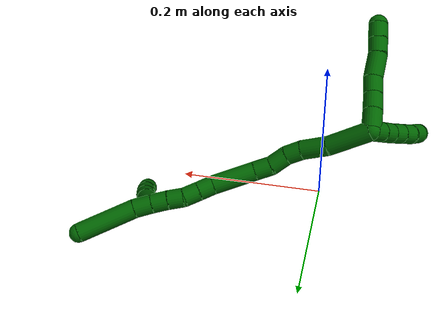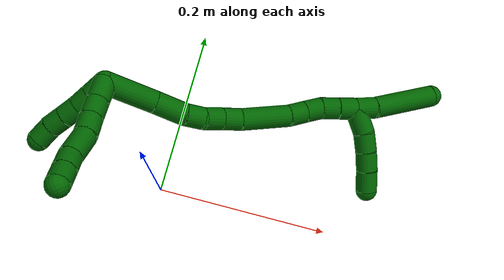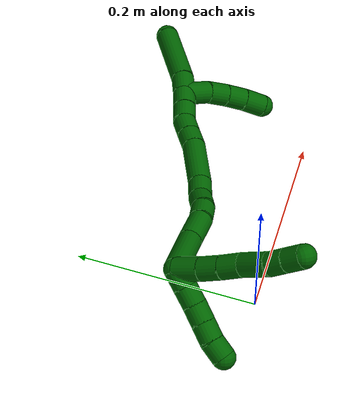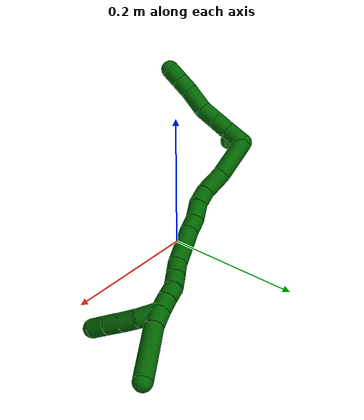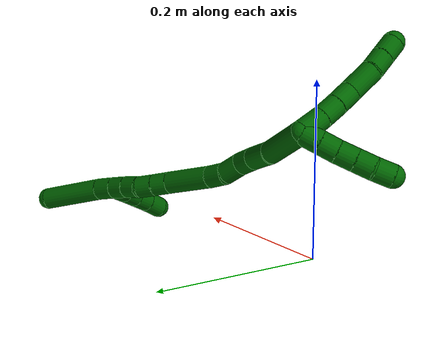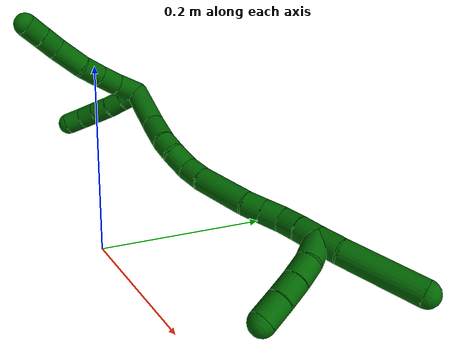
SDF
<sdf version="1.7">
 <world name="default">
  <model name="6">
   <static>0</static>
   <link name="6">
    <collision name="collision-cylinder-e_1_2_8">
     <pose>-0.009079 -0.005783 -0.008994 2.57014 -0.703951 -1.79228</pose>
     <geometry><cylinder><radius>0.0125</radius><length>0.028055</length></cylinder></geometry>
     <surface>
      <friction><ode><mu>1.16</mu><mu2>1.16</mu2><slip1>0</slip1><slip2>0</slip2></ode></friction>
      <contact><ode><kp>1e+06</kp><kd>1</kd><max_vel>0</max_vel><min_depth>0.001</min_depth></ode></contact>
     </surface>
    </collision>
    <visual name="visual-cylinder-e_1_2_8">
     <pose>-0.009079 -0.005783 -0.008994 2.57014 -0.703951 -1.79228</pose>
     <geometry><cylinder><radius>0.0125</radius><length>0.028055</length></cylinder></geometry>
     <material><ambient>0 0.392157 0.003922 1</ambient></material>
    </visual>
    <collision name="collision-cylinder-e_2_8_9">
     <pose>-0.025386 -0.017132 -0.025296 2.49081 -0.666651 -1.59672</pose>
     <geometry><cylinder><radius>0.0125</radius><length>0.023376</length></cylinder></geometry>
     <surface>
      <friction><ode><mu>1.16</mu><mu2>1.16</mu2><slip1>0</slip1><slip2>0</slip2></ode></friction>
      <contact><ode><kp>1e+06</kp><kd>1</kd><max_vel>0</max_vel><min_depth>0.001</min_depth></ode></contact>
     </surface>
    </collision>
    <visual name="visual-cylinder-e_2_8_9">
     <pose>-0.025386 -0.017132 -0.025296 2.49081 -0.666651 -1.59672</pose>
     <geometry><cylinder><radius>0.0125</radius><length>0.023376</length></cylinder></geometry>
     <material><ambient>0 0.392157 0.003922 1</ambient></material>
    </visual>
    <collision name="collision-cylinder-e_3_9_10">
     <pose>-0.039513 -0.028643 -0.040031 2.46633 -0.627454 -1.49199</pose>
     <geometry><cylinder><radius>0.0125</radius><length>0.023504</length></cylinder></geometry>
     <surface>
      <friction><ode><mu>1.16</mu><mu2>1.16</mu2><slip1>0</slip1><slip2>0</slip2></ode></friction>
      <contact><ode><kp>1e+06</kp><kd>1</kd><max_vel>0</max_vel><min_depth>0.001</min_depth></ode></contact>
     </surface>
    </collision>
    <visual name="visual-cylinder-e_3_9_10">
     <pose>-0.039513 -0.028643 -0.040031 2.46633 -0.627454 -1.49199</pose>
     <geometry><cylinder><radius>0.0125</radius><length>0.023504</length></cylinder></geometry>
     <material><ambient>0 0.392157 0.003922 1</ambient></material>
    </visual>
    <collision name="collision-cylinder-e_4_10_11">
     <pose>-0.058443 -0.043853 -0.054894 2.24738 -0.791745 -1.43382</pose>
     <geometry><cylinder><radius>0.0125</radius><length>0.033816</length></cylinder></geometry>
     <surface>
      <friction><ode><mu>1.16</mu><mu2>1.16</mu2><slip1>0</slip1><slip2>0</slip2></ode></friction>
      <contact><ode><kp>1e+06</kp><kd>1</kd><max_vel>0</max_vel><min_depth>0.001</min_depth></ode></contact>
     </surface>
    </collision>
    <visual name="visual-cylinder-e_4_10_11">
     <pose>-0.058443 -0.043853 -0.054894 2.24738 -0.791745 -1.43382</pose>
     <geometry><cylinder><radius>0.0125</radius><length>0.033816</length></cylinder></geometry>
     <material><ambient>0 0.392157 0.003922 1</ambient></material>
    </visual>
    <collision name="collision-cylinder-e_5_11_12">
     <pose>-0.076428 -0.059602 -0.067618 2.25456 -0.618402 -1.18392</pose>
     <geometry><cylinder><radius>0.0125</radius><length>0.020537</length></cylinder></geometry>
     <surface>
      <friction><ode><mu>1.16</mu><mu2>1.16</mu2><slip1>0</slip1><slip2>0</slip2></ode></friction>
      <contact><ode><kp>1e+06</kp><kd>1</kd><max_vel>0</max_vel><min_depth>0.001</min_depth></ode></contact>
     </surface>
    </collision>
    <visual name="visual-cylinder-e_5_11_12">
     <pose>-0.076428 -0.059602 -0.067618 2.25456 -0.618402 -1.18392</pose>
     <geometry><cylinder><radius>0.0125</radius><length>0.020537</length></cylinder></geometry>
     <material><ambient>0 0.392157 0.003922 1</ambient></material>
    </visual>
    <collision name="collision-cylinder-e_6_12_6">
     <pose>-0.088423 -0.072597 -0.07823 2.25659 -0.622981 -1.19367</pose>
     <geometry><cylinder><radius>0.0125</radius><length>0.020711</length></cylinder></geometry>
     <surface>
      <friction><ode><mu>1.16</mu><mu2>1.16</mu2><slip1>0</slip1><slip2>0</slip2></ode></friction>
      <contact><ode><kp>1e+06</kp><kd>1</kd><max_vel>0</max_vel><min_depth>0.001</min_depth></ode></contact>
     </surface>
    </collision>
    <visual name="visual-cylinder-e_6_12_6">
     <pose>-0.088423 -0.072597 -0.07823 2.25659 -0.622981 -1.19367</pose>
     <geometry><cylinder><radius>0.0125</radius><length>0.020711</length></cylinder></geometry>
     <material><ambient>0 0.392157 0.003922 1</ambient></material>
    </visual>
    <collision name="collision-cylinder-e_1_2_13">
     <pose>-0.007252 0.006311 -0.002753 -1.98219 -0.811356 1.16115</pose>
     <geometry><cylinder><radius>0.0125</radius><length>0.02</length></cylinder></geometry>
     <surface>
      <friction><ode><mu>1.16</mu><mu2>1.16</mu2><slip1>0</slip1><slip2>0</slip2></ode></friction>
      <contact><ode><kp>1e+06</kp><kd>1</kd><max_vel>0</max_vel><min_depth>0.001</min_depth></ode></contact>
     </surface>
    </collision>
    <visual name="visual-cylinder-e_1_2_13">
     <pose>-0.007252 0.006311 -0.002753 -1.98219 -0.811356 1.16115</pose>
     <geometry><cylinder><radius>0.0125</radius><length>0.02</length></cylinder></geometry>
     <material><ambient>0 0.392157 0.003922 1</ambient></material>
    </visual>
    <collision name="collision-cylinder-e_2_13_14">
     <pose>-0.021765 0.018919 -0.008268 -1.984 -0.812553 1.16447</pose>
     <geometry><cylinder><radius>0.0125</radius><length>0.02</length></cylinder></geometry>
     <surface>
      <friction><ode><mu>1.16</mu><mu2>1.16</mu2><slip1>0</slip1><slip2>0</slip2></ode></friction>
      <contact><ode><kp>1e+06</kp><kd>1</kd><max_vel>0</max_vel><min_depth>0.001</min_depth></ode></contact>
     </surface>
    </collision>
    <visual name="visual-cylinder-e_2_13_14">
     <pose>-0.021765 0.018919 -0.008268 -1.984 -0.812553 1.16447</pose>
     <geometry><cylinder><radius>0.0125</radius><length>0.02</length></cylinder></geometry>
     <material><ambient>0 0.392157 0.003922 1</ambient></material>
    </visual>
    <collision name="collision-cylinder-e_3_14_15">
     <pose>-0.036799 0.031137 -0.013157 -1.9158 -0.890397 1.1923</pose>
     <geometry><cylinder><radius>0.0125</radius><length>0.02</length></cylinder></geometry>
     <surface>
      <friction><ode><mu>1.16</mu><mu2>1.16</mu2><slip1>0</slip1><slip2>0</slip2></ode></friction>
      <contact><ode><kp>1e+06</kp><kd>1</kd><max_vel>0</max_vel><min_depth>0.001</min_depth></ode></contact>
     </surface>
    </collision>
    <visual name="visual-cylinder-e_3_14_15">
     <pose>-0.036799 0.031137 -0.013157 -1.9158 -0.890397 1.1923</pose>
     <geometry><cylinder><radius>0.0125</radius><length>0.02</length></cylinder></geometry>
     <material><ambient>0 0.392157 0.003922 1</ambient></material>
    </visual>
    <collision name="collision-cylinder-e_4_15_16">
     <pose>-0.052369 0.042976 -0.017326 -1.9029 -0.894297 1.18426</pose>
     <geometry><cylinder><radius>0.0125</radius><length>0.02</length></cylinder></geometry>
     <surface>
      <friction><ode><mu>1.16</mu><mu2>1.16</mu2><slip1>0</slip1><slip2>0</slip2></ode></friction>
      <contact><ode><kp>1e+06</kp><kd>1</kd><max_vel>0</max_vel><min_depth>0.001</min_depth></ode></contact>
     </surface>
    </collision>
    <visual name="visual-cylinder-e_4_15_16">
     <pose>-0.052369 0.042976 -0.017326 -1.9029 -0.894297 1.18426</pose>
     <geometry><cylinder><radius>0.0125</radius><length>0.02</length></cylinder></geometry>
     <material><ambient>0 0.392157 0.003922 1</ambient></material>
    </visual>
    <collision name="collision-cylinder-e_5_16_5">
     <pose>-0.067746 0.054186 -0.023183 -2.1956 -0.860059 1.4615</pose>
     <geometry><cylinder><radius>0.0125</radius><length>0.02</length></cylinder></geometry>
     <surface>
      <friction><ode><mu>1.16</mu><mu2>1.16</mu2><slip1>0</slip1><slip2>0</slip2></ode></friction>
      <contact><ode><kp>1e+06</kp><kd>1</kd><max_vel>0</max_vel><min_depth>0.001</min_depth></ode></contact>
     </surface>
    </collision>
    <visual name="visual-cylinder-e_5_16_5">
     <pose>-0.067746 0.054186 -0.023183 -2.1956 -0.860059 1.4615</pose>
     <geometry><cylinder><radius>0.0125</radius><length>0.02</length></cylinder></geometry>
     <material><ambient>0 0.392157 0.003922 1</ambient></material>
    </visual>
    <collision name="collision-cylinder-e_1_2_17">
     <pose>0.022443 0.004879 -0.01793 -2.87593 0.879235 -2.58796</pose>
     <geometry><cylinder><radius>0.0125</radius><length>0.058274</length></cylinder></geometry>
     <surface>
      <friction><ode><mu>1.16</mu><mu2>1.16</mu2><slip1>0</slip1><slip2>0</slip2></ode></friction>
      <contact><ode><kp>1e+06</kp><kd>1</kd><max_vel>0</max_vel><min_depth>0.001</min_depth></ode></contact>
     </surface>
    </collision>
    <visual name="visual-cylinder-e_1_2_17">
     <pose>0.022443 0.004879 -0.01793 -2.87593 0.879235 -2.58796</pose>
     <geometry><cylinder><radius>0.0125</radius><length>0.058274</length></cylinder></geometry>
     <material><ambient>0 0.392157 0.003922 1</ambient></material>
    </visual>
    <collision name="collision-cylinder-e_2_17_18">
     <pose>0.057986 0.009829 -0.047702 -3.13552 0.835806 -3.12793</pose>
     <geometry><cylinder><radius>0.0125</radius><length>0.035319</length></cylinder></geometry>
     <surface>
      <friction><ode><mu>1.16</mu><mu2>1.16</mu2><slip1>0</slip1><slip2>0</slip2></ode></friction>
      <contact><ode><kp>1e+06</kp><kd>1</kd><max_vel>0</max_vel><min_depth>0.001</min_depth></ode></contact>
     </surface>
    </collision>
    <visual name="visual-cylinder-e_2_17_18">
     <pose>0.057986 0.009829 -0.047702 -3.13552 0.835806 -3.12793</pose>
     <geometry><cylinder><radius>0.0125</radius><length>0.035319</length></cylinder></geometry>
     <material><ambient>0 0.392157 0.003922 1</ambient></material>
    </visual>
    <collision name="collision-cylinder-e_3_18_19">
     <pose>0.080213 0.01081 -0.065014 -2.97692 1.02481 -2.85026</pose>
     <geometry><cylinder><radius>0.0125</radius><length>0.02136</length></cylinder></geometry>
     <surface>
      <friction><ode><mu>1.16</mu><mu2>1.16</mu2><slip1>0</slip1><slip2>0</slip2></ode></friction>
      <contact><ode><kp>1e+06</kp><kd>1</kd><max_vel>0</max_vel><min_depth>0.001</min_depth></ode></contact>
     </surface>
    </collision>
    <visual name="visual-cylinder-e_3_18_19">
     <pose>0.080213 0.01081 -0.065014 -2.97692 1.02481 -2.85026</pose>
     <geometry><cylinder><radius>0.0125</radius><length>0.02136</length></cylinder></geometry>
     <material><ambient>0 0.392157 0.003922 1</ambient></material>
    </visual>
    <collision name="collision-cylinder-e_4_19_20">
     <pose>0.100344 0.014776 -0.074044 -2.43201 1.16776 -2.11956</pose>
     <geometry><cylinder><radius>0.0125</radius><length>0.023924</length></cylinder></geometry>
     <surface>
      <friction><ode><mu>1.16</mu><mu2>1.16</mu2><slip1>0</slip1><slip2>0</slip2></ode></friction>
      <contact><ode><kp>1e+06</kp><kd>1</kd><max_vel>0</max_vel><min_depth>0.001</min_depth></ode></contact>
     </surface>
    </collision>
    <visual name="visual-cylinder-e_4_19_20">
     <pose>0.100344 0.014776 -0.074044 -2.43201 1.16776 -2.11956</pose>
     <geometry><cylinder><radius>0.0125</radius><length>0.023924</length></cylinder></geometry>
     <material><ambient>0 0.392157 0.003922 1</ambient></material>
    </visual>
    <collision name="collision-cylinder-e_5_20_21">
     <pose>0.121706 0.017541 -0.081936 3.07445 1.17377 3.04069</pose>
     <geometry><cylinder><radius>0.0125</radius><length>0.022463</length></cylinder></geometry>
     <surface>
      <friction><ode><mu>1.16</mu><mu2>1.16</mu2><slip1>0</slip1><slip2>0</slip2></ode></friction>
      <contact><ode><kp>1e+06</kp><kd>1</kd><max_vel>0</max_vel><min_depth>0.001</min_depth></ode></contact>
     </surface>
    </collision>
    <visual name="visual-cylinder-e_5_20_21">
     <pose>0.121706 0.017541 -0.081936 3.07445 1.17377 3.04069</pose>
     <geometry><cylinder><radius>0.0125</radius><length>0.022463</length></cylinder></geometry>
     <material><ambient>0 0.392157 0.003922 1</ambient></material>
    </visual>
    <collision name="collision-cylinder-e_6_21_22">
     <pose>0.159261 0.014996 -0.094192 2.86436 1.27672 2.76989</pose>
     <geometry><cylinder><radius>0.0125</radius><length>0.056836</length></cylinder></geometry>
     <surface>
      <friction><ode><mu>1.16</mu><mu2>1.16</mu2><slip1>0</slip1><slip2>0</slip2></ode></friction>
      <contact><ode><kp>1e+06</kp><kd>1</kd><max_vel>0</max_vel><min_depth>0.001</min_depth></ode></contact>
     </surface>
    </collision>
    <visual name="visual-cylinder-e_6_21_22">
     <pose>0.159261 0.014996 -0.094192 2.86436 1.27672 2.76989</pose>
     <geometry><cylinder><radius>0.0125</radius><length>0.056836</length></cylinder></geometry>
     <material><ambient>0 0.392157 0.003922 1</ambient></material>
    </visual>
    <collision name="collision-cylinder-e_7_22_23">
     <pose>0.196369 0.012109 -0.103401 2.68472 1.42721 2.61691</pose>
     <geometry><cylinder><radius>0.0125</radius><length>0.020026</length></cylinder></geometry>
     <surface>
      <friction><ode><mu>1.16</mu><mu2>1.16</mu2><slip1>0</slip1><slip2>0</slip2></ode></friction>
      <contact><ode><kp>1e+06</kp><kd>1</kd><max_vel>0</max_vel><min_depth>0.001</min_depth></ode></contact>
     </surface>
    </collision>
    <visual name="visual-cylinder-e_7_22_23">
     <pose>0.196369 0.012109 -0.103401 2.68472 1.42721 2.61691</pose>
     <geometry><cylinder><radius>0.0125</radius><length>0.020026</length></cylinder></geometry>
     <material><ambient>0 0.392157 0.003922 1</ambient></material>
    </visual>
    <collision name="collision-cylinder-e_8_23_24">
     <pose>0.216361 0.010686 -0.106135 2.64155 1.40854 2.55764</pose>
     <geometry><cylinder><radius>0.0125</radius><length>0.020434</length></cylinder></geometry>
     <surface>
      <friction><ode><mu>1.16</mu><mu2>1.16</mu2><slip1>0</slip1><slip2>0</slip2></ode></friction>
      <contact><ode><kp>1e+06</kp><kd>1</kd><max_vel>0</max_vel><min_depth>0.001</min_depth></ode></contact>
     </surface>
    </collision>
    <visual name="visual-cylinder-e_8_23_24">
     <pose>0.216361 0.010686 -0.106135 2.64155 1.40854 2.55764</pose>
     <geometry><cylinder><radius>0.0125</radius><length>0.020434</length></cylinder></geometry>
     <material><ambient>0 0.392157 0.003922 1</ambient></material>
    </visual>
    <collision name="collision-cylinder-e_9_24_25">
     <pose>0.235747 0.007977 -0.111527 2.68898 1.1303 2.44503</pose>
     <geometry><cylinder><radius>0.0125</radius><length>0.02057</length></cylinder></geometry>
     <surface>
      <friction><ode><mu>1.16</mu><mu2>1.16</mu2><slip1>0</slip1><slip2>0</slip2></ode></friction>
      <contact><ode><kp>1e+06</kp><kd>1</kd><max_vel>0</max_vel><min_depth>0.001</min_depth></ode></contact>
     </surface>
    </collision>
    <visual name="visual-cylinder-e_9_24_25">
     <pose>0.235747 0.007977 -0.111527 2.68898 1.1303 2.44503</pose>
     <geometry><cylinder><radius>0.0125</radius><length>0.02057</length></cylinder></geometry>
     <material><ambient>0 0.392157 0.003922 1</ambient></material>
    </visual>
    <collision name="collision-cylinder-e_10_25_1">
     <pose>0.254629 0.004613 -0.11925 2.77627 1.17113 2.59827</pose>
     <geometry><cylinder><radius>0.0125</radius><length>0.020796</length></cylinder></geometry>
     <surface>
      <friction><ode><mu>1.16</mu><mu2>1.16</mu2><slip1>0</slip1><slip2>0</slip2></ode></friction>
      <contact><ode><kp>1e+06</kp><kd>1</kd><max_vel>0</max_vel><min_depth>0.001</min_depth></ode></contact>
     </surface>
    </collision>
    <visual name="visual-cylinder-e_10_25_1">
     <pose>0.254629 0.004613 -0.11925 2.77627 1.17113 2.59827</pose>
     <geometry><cylinder><radius>0.0125</radius><length>0.020796</length></cylinder></geometry>
     <material><ambient>0 0.392157 0.003922 1</ambient></material>
    </visual>
    <collision name="collision-cylinder-e_1_1_26">
     <pose>0.275421 0.001706 -0.126695 2.76212 1.23233 2.61193</pose>
     <geometry><cylinder><radius>0.0125</radius><length>0.023776</length></cylinder></geometry>
     <surface>
      <friction><ode><mu>1.16</mu><mu2>1.16</mu2><slip1>0</slip1><slip2>0</slip2></ode></friction>
      <contact><ode><kp>1e+06</kp><kd>1</kd><max_vel>0</max_vel><min_depth>0.001</min_depth></ode></contact>
     </surface>
    </collision>
    <visual name="visual-cylinder-e_1_1_26">
     <pose>0.275421 0.001706 -0.126695 2.76212 1.23233 2.61193</pose>
     <geometry><cylinder><radius>0.0125</radius><length>0.023776</length></cylinder></geometry>
     <material><ambient>0 0.392157 0.003922 1</ambient></material>
    </visual>
    <collision name="collision-cylinder-e_2_26_4">
     <pose>0.324199 -0.001447 -0.136572 2.87581 1.40109 2.82714</pose>
     <geometry><cylinder><radius>0.0125</radius><length>0.076224</length></cylinder></geometry>
     <surface>
      <friction><ode><mu>1.16</mu><mu2>1.16</mu2><slip1>0</slip1><slip2>0</slip2></ode></friction>
      <contact><ode><kp>1e+06</kp><kd>1</kd><max_vel>0</max_vel><min_depth>0.001</min_depth></ode></contact>
     </surface>
    </collision>
    <visual name="visual-cylinder-e_2_26_4">
     <pose>0.324199 -0.001447 -0.136572 2.87581 1.40109 2.82714</pose>
     <geometry><cylinder><radius>0.0125</radius><length>0.076224</length></cylinder></geometry>
     <material><ambient>0 0.392157 0.003922 1</ambient></material>
    </visual>
    <collision name="collision-cylinder-e_1_1_27">
     <pose>0.264843 0.005513 -0.137753 -2.98367 0.042641 -0.526488</pose>
     <geometry><cylinder><radius>0.0125</radius><length>0.029846</length></cylinder></geometry>
     <surface>
      <friction><ode><mu>1.16</mu><mu2>1.16</mu2><slip1>0</slip1><slip2>0</slip2></ode></friction>
      <contact><ode><kp>1e+06</kp><kd>1</kd><max_vel>0</max_vel><min_depth>0.001</min_depth></ode></contact>
     </surface>
    </collision>
    <visual name="visual-cylinder-e_1_1_27">
     <pose>0.264843 0.005513 -0.137753 -2.98367 0.042641 -0.526488</pose>
     <geometry><cylinder><radius>0.0125</radius><length>0.029846</length></cylinder></geometry>
     <material><ambient>0 0.392157 0.003922 1</ambient></material>
    </visual>
    <collision name="collision-cylinder-e_2_27_28">
     <pose>0.26391 0.010988 -0.163305 -2.86016 -0.138392 0.910046</pose>
     <geometry><cylinder><radius>0.0125</radius><length>0.02276</length></cylinder></geometry>
     <surface>
      <friction><ode><mu>1.16</mu><mu2>1.16</mu2><slip1>0</slip1><slip2>0</slip2></ode></friction>
      <contact><ode><kp>1e+06</kp><kd>1</kd><max_vel>0</max_vel><min_depth>0.001</min_depth></ode></contact>
     </surface>
    </collision>
    <visual name="visual-cylinder-e_2_27_28">
     <pose>0.26391 0.010988 -0.163305 -2.86016 -0.138392 0.910046</pose>
     <geometry><cylinder><radius>0.0125</radius><length>0.02276</length></cylinder></geometry>
     <material><ambient>0 0.392157 0.003922 1</ambient></material>
    </visual>
    <collision name="collision-cylinder-e_3_28_29">
     <pose>0.260081 0.01761 -0.184677 -2.82181 -0.200652 1.11605</pose>
     <geometry><cylinder><radius>0.0125</radius><length>0.022669</length></cylinder></geometry>
     <surface>
      <friction><ode><mu>1.16</mu><mu2>1.16</mu2><slip1>0</slip1><slip2>0</slip2></ode></friction>
      <contact><ode><kp>1e+06</kp><kd>1</kd><max_vel>0</max_vel><min_depth>0.001</min_depth></ode></contact>
     </surface>
    </collision>
    <visual name="visual-cylinder-e_3_28_29">
     <pose>0.260081 0.01761 -0.184677 -2.82181 -0.200652 1.11605</pose>
     <geometry><cylinder><radius>0.0125</radius><length>0.022669</length></cylinder></geometry>
     <material><ambient>0 0.392157 0.003922 1</ambient></material>
    </visual>
    <collision name="collision-cylinder-e_4_29_3">
     <pose>0.254968 0.025707 -0.206332 -2.74867 -0.232964 1.06298</pose>
     <geometry><cylinder><radius>0.0125</radius><length>0.024725</length></cylinder></geometry>
     <surface>
      <friction><ode><mu>1.16</mu><mu2>1.16</mu2><slip1>0</slip1><slip2>0</slip2></ode></friction>
      <contact><ode><kp>1e+06</kp><kd>1</kd><max_vel>0</max_vel><min_depth>0.001</min_depth></ode></contact>
     </surface>
    </collision>
    <visual name="visual-cylinder-e_4_29_3">
     <pose>0.254968 0.025707 -0.206332 -2.74867 -0.232964 1.06298</pose>
     <geometry><cylinder><radius>0.0125</radius><length>0.024725</length></cylinder></geometry>
     <material><ambient>0 0.392157 0.003922 1</ambient></material>
    </visual>
    <collision name="collision-sphere-3">
     <pose>0.252114 0.030313 -0.217444 0 -0 0</pose>
     <geometry><sphere><radius>0.0125</radius></sphere></geometry>
     <surface>
      <friction><ode><mu>1.16</mu><mu2>1.16</mu2><slip1>0</slip1><slip2>0</slip2></ode></friction>
      <contact><ode><kp>1e+06</kp><kd>1</kd><max_vel>0</max_vel><min_depth>0.001</min_depth></ode></contact>
     </surface>
    </collision>
    <visual name="visual-sphere-3">
     <pose>0.252114 0.030313 -0.217444 0 -0 0</pose>
     <geometry><sphere><radius>0.0125</radius></sphere></geometry>
     <material><ambient>0 0.392157 0.003922 1</ambient></material>
    </visual>
    <collision name="collision-sphere-29">
     <pose>0.257822 0.021102 -0.19522 0 -0 0</pose>
     <geometry><sphere><radius>0.0125</radius></sphere></geometry>
     <surface>
      <friction><ode><mu>1.16</mu><mu2>1.16</mu2><slip1>0</slip1><slip2>0</slip2></ode></friction>
      <contact><ode><kp>1e+06</kp><kd>1</kd><max_vel>0</max_vel><min_depth>0.001</min_depth></ode></contact>
     </surface>
    </collision>
    <visual name="visual-sphere-29">
     <pose>0.257822 0.021102 -0.19522 0 -0 0</pose>
     <geometry><sphere><radius>0.0125</radius></sphere></geometry>
     <material><ambient>0 0.392157 0.003922 1</ambient></material>
    </visual>
    <collision name="collision-sphere-28">
     <pose>0.26234 0.014118 -0.174133 0 -0 0</pose>
     <geometry><sphere><radius>0.0125</radius></sphere></geometry>
     <surface>
      <friction><ode><mu>1.16</mu><mu2>1.16</mu2><slip1>0</slip1><slip2>0</slip2></ode></friction>
      <contact><ode><kp>1e+06</kp><kd>1</kd><max_vel>0</max_vel><min_depth>0.001</min_depth></ode></contact>
     </surface>
    </collision>
    <visual name="visual-sphere-28">
     <pose>0.26234 0.014118 -0.174133 0 -0 0</pose>
     <geometry><sphere><radius>0.0125</radius></sphere></geometry>
     <material><ambient>0 0.392157 0.003922 1</ambient></material>
    </visual>
    <collision name="collision-sphere-27">
     <pose>0.265479 0.007857 -0.152477 0 -0 0</pose>
     <geometry><sphere><radius>0.0125</radius></sphere></geometry>
     <surface>
      <friction><ode><mu>1.16</mu><mu2>1.16</mu2><slip1>0</slip1><slip2>0</slip2></ode></friction>
      <contact><ode><kp>1e+06</kp><kd>1</kd><max_vel>0</max_vel><min_depth>0.001</min_depth></ode></contact>
     </surface>
    </collision>
    <visual name="visual-sphere-27">
     <pose>0.265479 0.007857 -0.152477 0 -0 0</pose>
     <geometry><sphere><radius>0.0125</radius></sphere></geometry>
     <material><ambient>0 0.392157 0.003922 1</ambient></material>
    </visual>
    <collision name="collision-sphere-4">
     <pose>0.361763 -0.003138 -0.142783 0 -0 0</pose>
     <geometry><sphere><radius>0.0125</radius></sphere></geometry>
     <surface>
      <friction><ode><mu>1.16</mu><mu2>1.16</mu2><slip1>0</slip1><slip2>0</slip2></ode></friction>
      <contact><ode><kp>1e+06</kp><kd>1</kd><max_vel>0</max_vel><min_depth>0.001</min_depth></ode></contact>
     </surface>
    </collision>
    <visual name="visual-sphere-4">
     <pose>0.361763 -0.003138 -0.142783 0 -0 0</pose>
     <geometry><sphere><radius>0.0125</radius></sphere></geometry>
     <material><ambient>0 0.392157 0.003922 1</ambient></material>
    </visual>
    <collision name="collision-sphere-26">
     <pose>0.286634 0.000244 -0.130362 0 -0 0</pose>
     <geometry><sphere><radius>0.0125</radius></sphere></geometry>
     <surface>
      <friction><ode><mu>1.16</mu><mu2>1.16</mu2><slip1>0</slip1><slip2>0</slip2></ode></friction>
      <contact><ode><kp>1e+06</kp><kd>1</kd><max_vel>0</max_vel><min_depth>0.001</min_depth></ode></contact>
     </surface>
    </collision>
    <visual name="visual-sphere-26">
     <pose>0.286634 0.000244 -0.130362 0 -0 0</pose>
     <geometry><sphere><radius>0.0125</radius></sphere></geometry>
     <material><ambient>0 0.392157 0.003922 1</ambient></material>
    </visual>
    <collision name="collision-sphere-1">
     <pose>0.264207 0.003168 -0.123029 0 -0 0</pose>
     <geometry><sphere><radius>0.0125</radius></sphere></geometry>
     <surface>
      <friction><ode><mu>1.16</mu><mu2>1.16</mu2><slip1>0</slip1><slip2>0</slip2></ode></friction>
      <contact><ode><kp>1e+06</kp><kd>1</kd><max_vel>0</max_vel><min_depth>0.001</min_depth></ode></contact>
     </surface>
    </collision>
    <visual name="visual-sphere-1">
     <pose>0.264207 0.003168 -0.123029 0 -0 0</pose>
     <geometry><sphere><radius>0.0125</radius></sphere></geometry>
     <material><ambient>0 0.392157 0.003922 1</ambient></material>
    </visual>
    <collision name="collision-sphere-25">
     <pose>0.24505 0.006059 -0.115471 0 -0 0</pose>
     <geometry><sphere><radius>0.0125</radius></sphere></geometry>
     <surface>
      <friction><ode><mu>1.16</mu><mu2>1.16</mu2><slip1>0</slip1><slip2>0</slip2></ode></friction>
      <contact><ode><kp>1e+06</kp><kd>1</kd><max_vel>0</max_vel><min_depth>0.001</min_depth></ode></contact>
     </surface>
    </collision>
    <visual name="visual-sphere-25">
     <pose>0.24505 0.006059 -0.115471 0 -0 0</pose>
     <geometry><sphere><radius>0.0125</radius></sphere></geometry>
     <material><ambient>0 0.392157 0.003922 1</ambient></material>
    </visual>
    <collision name="collision-sphere-24">
     <pose>0.226444 0.009894 -0.107583 0 -0 0</pose>
     <geometry><sphere><radius>0.0125</radius></sphere></geometry>
     <surface>
      <friction><ode><mu>1.16</mu><mu2>1.16</mu2><slip1>0</slip1><slip2>0</slip2></ode></friction>
      <contact><ode><kp>1e+06</kp><kd>1</kd><max_vel>0</max_vel><min_depth>0.001</min_depth></ode></contact>
     </surface>
    </collision>
    <visual name="visual-sphere-24">
     <pose>0.226444 0.009894 -0.107583 0 -0 0</pose>
     <geometry><sphere><radius>0.0125</radius></sphere></geometry>
     <material><ambient>0 0.392157 0.003922 1</ambient></material>
    </visual>
    <collision name="collision-sphere-23">
     <pose>0.206279 0.011477 -0.104686 0 -0 0</pose>
     <geometry><sphere><radius>0.0125</radius></sphere></geometry>
     <surface>
      <friction><ode><mu>1.16</mu><mu2>1.16</mu2><slip1>0</slip1><slip2>0</slip2></ode></friction>
      <contact><ode><kp>1e+06</kp><kd>1</kd><max_vel>0</max_vel><min_depth>0.001</min_depth></ode></contact>
     </surface>
    </collision>
    <visual name="visual-sphere-23">
     <pose>0.206279 0.011477 -0.104686 0 -0 0</pose>
     <geometry><sphere><radius>0.0125</radius></sphere></geometry>
     <material><ambient>0 0.392157 0.003922 1</ambient></material>
    </visual>
    <collision name="collision-sphere-22">
     <pose>0.186459 0.012741 -0.102115 0 -0 0</pose>
     <geometry><sphere><radius>0.0125</radius></sphere></geometry>
     <surface>
      <friction><ode><mu>1.16</mu><mu2>1.16</mu2><slip1>0</slip1><slip2>0</slip2></ode></friction>
      <contact><ode><kp>1e+06</kp><kd>1</kd><max_vel>0</max_vel><min_depth>0.001</min_depth></ode></contact>
     </surface>
    </collision>
    <visual name="visual-sphere-22">
     <pose>0.186459 0.012741 -0.102115 0 -0 0</pose>
     <geometry><sphere><radius>0.0125</radius></sphere></geometry>
     <material><ambient>0 0.392157 0.003922 1</ambient></material>
    </visual>
    <collision name="collision-sphere-21">
     <pose>0.132063 0.01725 -0.08627 0 -0 0</pose>
     <geometry><sphere><radius>0.0125</radius></sphere></geometry>
     <surface>
      <friction><ode><mu>1.16</mu><mu2>1.16</mu2><slip1>0</slip1><slip2>0</slip2></ode></friction>
      <contact><ode><kp>1e+06</kp><kd>1</kd><max_vel>0</max_vel><min_depth>0.001</min_depth></ode></contact>
     </surface>
    </collision>
    <visual name="visual-sphere-21">
     <pose>0.132063 0.01725 -0.08627 0 -0 0</pose>
     <geometry><sphere><radius>0.0125</radius></sphere></geometry>
     <material><ambient>0 0.392157 0.003922 1</ambient></material>
    </visual>
    <collision name="collision-sphere-12">
     <pose>-0.082381 -0.066088 -0.072904 0 -0 0</pose>
     <geometry><sphere><radius>0.0125</radius></sphere></geometry>
     <surface>
      <friction><ode><mu>1.16</mu><mu2>1.16</mu2><slip1>0</slip1><slip2>0</slip2></ode></friction>
      <contact><ode><kp>1e+06</kp><kd>1</kd><max_vel>0</max_vel><min_depth>0.001</min_depth></ode></contact>
     </surface>
    </collision>
    <visual name="visual-sphere-12">
     <pose>-0.082381 -0.066088 -0.072904 0 -0 0</pose>
     <geometry><sphere><radius>0.0125</radius></sphere></geometry>
     <material><ambient>0 0.392157 0.003922 1</ambient></material>
    </visual>
    <collision name="collision-sphere-11">
     <pose>-0.070475 -0.053116 -0.062333 0 -0 0</pose>
     <geometry><sphere><radius>0.0125</radius></sphere></geometry>
     <surface>
      <friction><ode><mu>1.16</mu><mu2>1.16</mu2><slip1>0</slip1><slip2>0</slip2></ode></friction>
      <contact><ode><kp>1e+06</kp><kd>1</kd><max_vel>0</max_vel><min_depth>0.001</min_depth></ode></contact>
     </surface>
    </collision>
    <visual name="visual-sphere-11">
     <pose>-0.070475 -0.053116 -0.062333 0 -0 0</pose>
     <geometry><sphere><radius>0.0125</radius></sphere></geometry>
     <material><ambient>0 0.392157 0.003922 1</ambient></material>
    </visual>
    <collision name="collision-sphere-10">
     <pose>-0.046412 -0.03459 -0.047456 0 -0 0</pose>
     <geometry><sphere><radius>0.0125</radius></sphere></geometry>
     <surface>
      <friction><ode><mu>1.16</mu><mu2>1.16</mu2><slip1>0</slip1><slip2>0</slip2></ode></friction>
      <contact><ode><kp>1e+06</kp><kd>1</kd><max_vel>0</max_vel><min_depth>0.001</min_depth></ode></contact>
     </surface>
    </collision>
    <visual name="visual-sphere-10">
     <pose>-0.046412 -0.03459 -0.047456 0 -0 0</pose>
     <geometry><sphere><radius>0.0125</radius></sphere></geometry>
     <material><ambient>0 0.392157 0.003922 1</ambient></material>
    </visual>
    <collision name="collision-sphere-9">
     <pose>-0.032613 -0.022696 -0.032605 0 -0 0</pose>
     <geometry><sphere><radius>0.0125</radius></sphere></geometry>
     <surface>
      <friction><ode><mu>1.16</mu><mu2>1.16</mu2><slip1>0</slip1><slip2>0</slip2></ode></friction>
      <contact><ode><kp>1e+06</kp><kd>1</kd><max_vel>0</max_vel><min_depth>0.001</min_depth></ode></contact>
     </surface>
    </collision>
    <visual name="visual-sphere-9">
     <pose>-0.032613 -0.022696 -0.032605 0 -0 0</pose>
     <geometry><sphere><radius>0.0125</radius></sphere></geometry>
     <material><ambient>0 0.392157 0.003922 1</ambient></material>
    </visual>
    <collision name="collision-sphere-2">
     <geometry><sphere><radius>0.0125</radius></sphere></geometry>
     <surface>
      <friction><ode><mu>1.16</mu><mu2>1.16</mu2><slip1>0</slip1><slip2>0</slip2></ode></friction>
      <contact><ode><kp>1e+06</kp><kd>1</kd><max_vel>0</max_vel><min_depth>0.001</min_depth></ode></contact>
     </surface>
    </collision>
    <visual name="visual-sphere-2">
     <geometry><sphere><radius>0.0125</radius></sphere></geometry>
     <material><ambient>0 0.392157 0.003922 1</ambient></material>
    </visual>
    <collision name="collision-sphere-19">
     <pose>0.089341 0.011719 -0.070485 0 -0 0</pose>
     <geometry><sphere><radius>0.0125</radius></sphere></geometry>
     <surface>
      <friction><ode><mu>1.16</mu><mu2>1.16</mu2><slip1>0</slip1><slip2>0</slip2></ode></friction>
      <contact><ode><kp>1e+06</kp><kd>1</kd><max_vel>0</max_vel><min_depth>0.001</min_depth></ode></contact>
     </surface>
    </collision>
    <visual name="visual-sphere-19">
     <pose>0.089341 0.011719 -0.070485 0 -0 0</pose>
     <geometry><sphere><radius>0.0125</radius></sphere></geometry>
     <material><ambient>0 0.392157 0.003922 1</ambient></material>
    </visual>
    <collision name="collision-sphere-8">
     <pose>-0.018158 -0.011567 -0.017988 0 -0 0</pose>
     <geometry><sphere><radius>0.0125</radius></sphere></geometry>
     <surface>
      <friction><ode><mu>1.16</mu><mu2>1.16</mu2><slip1>0</slip1><slip2>0</slip2></ode></friction>
      <contact><ode><kp>1e+06</kp><kd>1</kd><max_vel>0</max_vel><min_depth>0.001</min_depth></ode></contact>
     </surface>
    </collision>
    <visual name="visual-sphere-8">
     <pose>-0.018158 -0.011567 -0.017988 0 -0 0</pose>
     <geometry><sphere><radius>0.0125</radius></sphere></geometry>
     <material><ambient>0 0.392157 0.003922 1</ambient></material>
    </visual>
    <collision name="collision-sphere-6">
     <pose>-0.094465 -0.079106 -0.083556 0 -0 0</pose>
     <geometry><sphere><radius>0.0125</radius></sphere></geometry>
     <surface>
      <friction><ode><mu>1.16</mu><mu2>1.16</mu2><slip1>0</slip1><slip2>0</slip2></ode></friction>
      <contact><ode><kp>1e+06</kp><kd>1</kd><max_vel>0</max_vel><min_depth>0.001</min_depth></ode></contact>
     </surface>
    </collision>
    <visual name="visual-sphere-6">
     <pose>-0.094465 -0.079106 -0.083556 0 -0 0</pose>
     <geometry><sphere><radius>0.0125</radius></sphere></geometry>
     <material><ambient>0 0.392157 0.003922 1</ambient></material>
    </visual>
    <collision name="collision-sphere-13">
     <pose>-0.014504 0.012621 -0.005507 0 -0 0</pose>
     <geometry><sphere><radius>0.0125</radius></sphere></geometry>
     <surface>
      <friction><ode><mu>1.16</mu><mu2>1.16</mu2><slip1>0</slip1><slip2>0</slip2></ode></friction>
      <contact><ode><kp>1e+06</kp><kd>1</kd><max_vel>0</max_vel><min_depth>0.001</min_depth></ode></contact>
     </surface>
    </collision>
    <visual name="visual-sphere-13">
     <pose>-0.014504 0.012621 -0.005507 0 -0 0</pose>
     <geometry><sphere><radius>0.0125</radius></sphere></geometry>
     <material><ambient>0 0.392157 0.003922 1</ambient></material>
    </visual>
    <collision name="collision-sphere-14">
     <pose>-0.029025 0.025217 -0.011029 0 -0 0</pose>
     <geometry><sphere><radius>0.0125</radius></sphere></geometry>
     <surface>
      <friction><ode><mu>1.16</mu><mu2>1.16</mu2><slip1>0</slip1><slip2>0</slip2></ode></friction>
      <contact><ode><kp>1e+06</kp><kd>1</kd><max_vel>0</max_vel><min_depth>0.001</min_depth></ode></contact>
     </surface>
    </collision>
    <visual name="visual-sphere-14">
     <pose>-0.029025 0.025217 -0.011029 0 -0 0</pose>
     <geometry><sphere><radius>0.0125</radius></sphere></geometry>
     <material><ambient>0 0.392157 0.003922 1</ambient></material>
    </visual>
    <collision name="collision-sphere-15">
     <pose>-0.044572 0.037058 -0.015284 0 -0 0</pose>
     <geometry><sphere><radius>0.0125</radius></sphere></geometry>
     <surface>
      <friction><ode><mu>1.16</mu><mu2>1.16</mu2><slip1>0</slip1><slip2>0</slip2></ode></friction>
      <contact><ode><kp>1e+06</kp><kd>1</kd><max_vel>0</max_vel><min_depth>0.001</min_depth></ode></contact>
     </surface>
    </collision>
    <visual name="visual-sphere-15">
     <pose>-0.044572 0.037058 -0.015284 0 -0 0</pose>
     <geometry><sphere><radius>0.0125</radius></sphere></geometry>
     <material><ambient>0 0.392157 0.003922 1</ambient></material>
    </visual>
    <collision name="collision-sphere-16">
     <pose>-0.060167 0.048895 -0.019367 0 -0 0</pose>
     <geometry><sphere><radius>0.0125</radius></sphere></geometry>
     <surface>
      <friction><ode><mu>1.16</mu><mu2>1.16</mu2><slip1>0</slip1><slip2>0</slip2></ode></friction>
      <contact><ode><kp>1e+06</kp><kd>1</kd><max_vel>0</max_vel><min_depth>0.001</min_depth></ode></contact>
     </surface>
    </collision>
    <visual name="visual-sphere-16">
     <pose>-0.060167 0.048895 -0.019367 0 -0 0</pose>
     <geometry><sphere><radius>0.0125</radius></sphere></geometry>
     <material><ambient>0 0.392157 0.003922 1</ambient></material>
    </visual>
    <collision name="collision-sphere-5">
     <pose>-0.075325 0.059477 -0.026999 0 -0 0</pose>
     <geometry><sphere><radius>0.0125</radius></sphere></geometry>
     <surface>
      <friction><ode><mu>1.16</mu><mu2>1.16</mu2><slip1>0</slip1><slip2>0</slip2></ode></friction>
      <contact><ode><kp>1e+06</kp><kd>1</kd><max_vel>0</max_vel><min_depth>0.001</min_depth></ode></contact>
     </surface>
    </collision>
    <visual name="visual-sphere-5">
     <pose>-0.075325 0.059477 -0.026999 0 -0 0</pose>
     <geometry><sphere><radius>0.0125</radius></sphere></geometry>
     <material><ambient>0 0.392157 0.003922 1</ambient></material>
    </visual>
    <collision name="collision-sphere-17">
     <pose>0.044885 0.009757 -0.03586 0 -0 0</pose>
     <geometry><sphere><radius>0.0125</radius></sphere></geometry>
     <surface>
      <friction><ode><mu>1.16</mu><mu2>1.16</mu2><slip1>0</slip1><slip2>0</slip2></ode></friction>
      <contact><ode><kp>1e+06</kp><kd>1</kd><max_vel>0</max_vel><min_depth>0.001</min_depth></ode></contact>
     </surface>
    </collision>
    <visual name="visual-sphere-17">
     <pose>0.044885 0.009757 -0.03586 0 -0 0</pose>
     <geometry><sphere><radius>0.0125</radius></sphere></geometry>
     <material><ambient>0 0.392157 0.003922 1</ambient></material>
    </visual>
    <collision name="collision-sphere-18">
     <pose>0.071086 0.009901 -0.059543 0 -0 0</pose>
     <geometry><sphere><radius>0.0125</radius></sphere></geometry>
     <surface>
      <friction><ode><mu>1.16</mu><mu2>1.16</mu2><slip1>0</slip1><slip2>0</slip2></ode></friction>
      <contact><ode><kp>1e+06</kp><kd>1</kd><max_vel>0</max_vel><min_depth>0.001</min_depth></ode></contact>
     </surface>
    </collision>
    <visual name="visual-sphere-18">
     <pose>0.071086 0.009901 -0.059543 0 -0 0</pose>
     <geometry><sphere><radius>0.0125</radius></sphere></geometry>
     <material><ambient>0 0.392157 0.003922 1</ambient></material>
    </visual>
    <collision name="collision-sphere-20">
     <pose>0.111348 0.017833 -0.077603 0 -0 0</pose>
     <geometry><sphere><radius>0.0125</radius></sphere></geometry>
     <surface>
      <friction><ode><mu>1.16</mu><mu2>1.16</mu2><slip1>0</slip1><slip2>0</slip2></ode></friction>
      <contact><ode><kp>1e+06</kp><kd>1</kd><max_vel>0</max_vel><min_depth>0.001</min_depth></ode></contact>
     </surface>
    </collision>
    <visual name="visual-sphere-20">
     <pose>0.111348 0.017833 -0.077603 0 -0 0</pose>
     <geometry><sphere><radius>0.0125</radius></sphere></geometry>
     <material><ambient>0 0.392157 0.003922 1</ambient></material>
    </visual>
    <inertial>
     <pose>0.112336 0.002916 -0.080772 0 -0 0</pose>
     <mass>0.75</mass>
     <inertia>
      <ixx>-1.1e-05</ixx>
      <ixy>0</ixy>
      <ixz>0</ixz>
      <iyy>9.2e-05</iyy>
      <iyz>0</iyz>
      <izz>-9.7e-05</izz>
     </inertia>
    </inertial>
   </link>
   <pose>-0.063794 0.068899 0.160868 -1.33239 0.274234 0.714624</pose>
  </model>
 </world>
</sdf>
